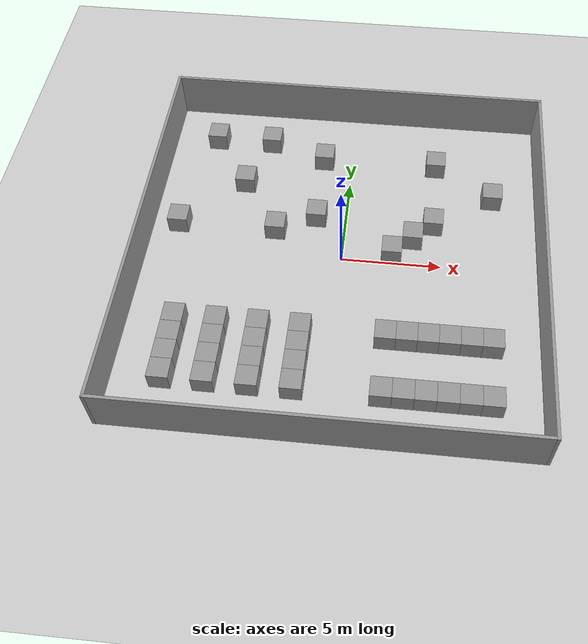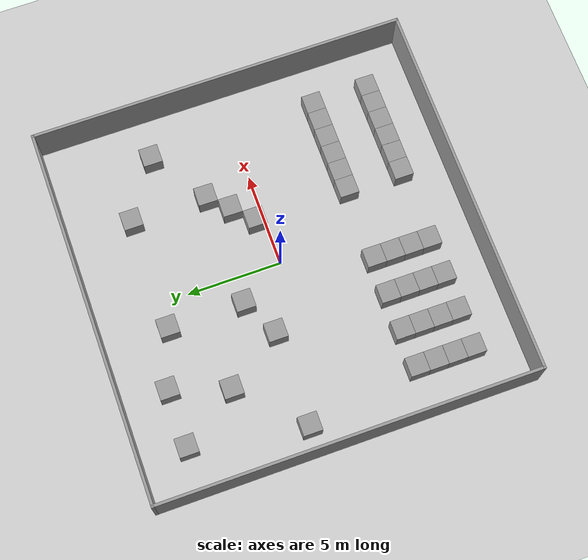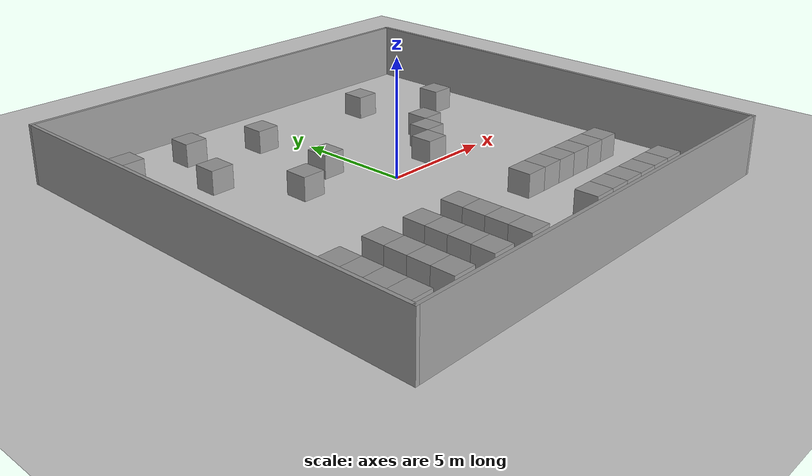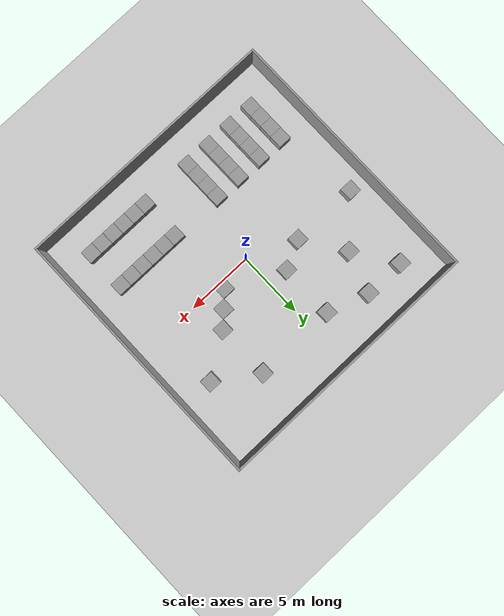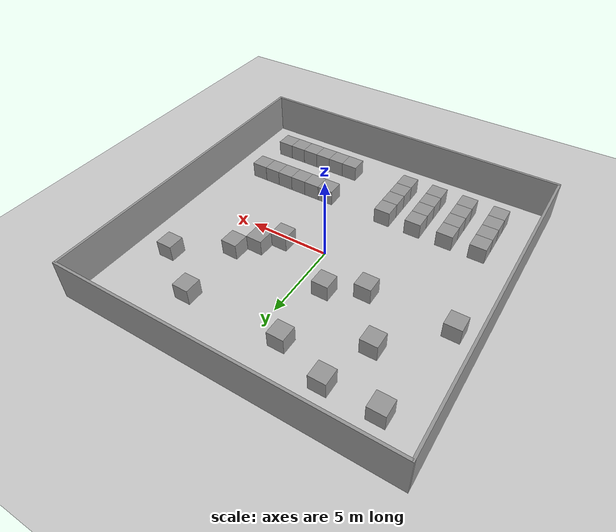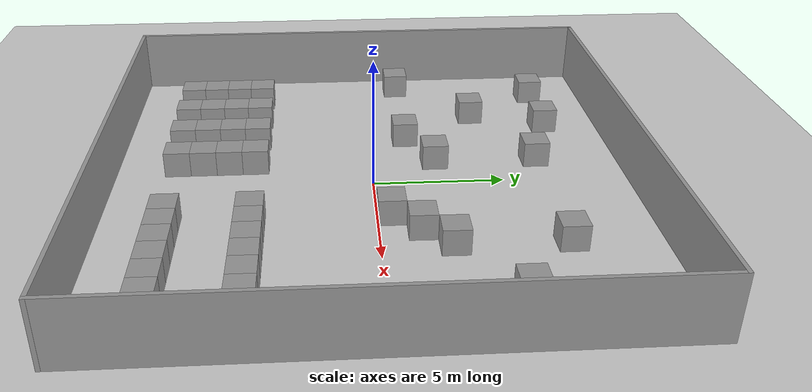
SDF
<sdf version="1.7">
 <world name="default">
  <light name="sun" type="directional">
   <pose>0 0 10 0 -0 0</pose>
   <diffuse>0.8 0.8 0.8 1</diffuse>
   <specular>0.2 0.2 0.2 1</specular>
   <attenuation>
    <range>1000</range>
    <constant>0.9</constant>
    <linear>0.01</linear>
    <quadratic>0.001</quadratic>
   </attenuation>
   <direction>-0.5 0.1 -0.9</direction>
   <spot><inner_angle>0</inner_angle><outer_angle>0</outer_angle><falloff>0</falloff></spot>
  </light>
  <model name="ground_plane">
   <static>1</static>
   <link name="link">
    <collision name="collision">
     <geometry><plane><normal>0 0 1</normal><size>100 100</size></plane></geometry>
     <surface>
      <contact><collide_bitmask>65535</collide_bitmask></contact>
      <friction><ode><mu>1000</mu><mu2>500</mu2></ode></friction>
     </surface>
    </collision>
    <visual name="visual">
     <cast_shadows>0</cast_shadows>
     <geometry><plane><normal>0 0 1</normal><size>100 100</size></plane></geometry>
     <material>
      <script><uri>file://media/materials/scripts/gazebo.material</uri><name>Gazebo/Grey</name></script>
     </material>
    </visual>
   </link>
  </model>
  <gravity>0 0 -9.8</gravity>
  <magnetic_field>6e-06 2.3e-05 -4.2e-05</magnetic_field>
  <atmosphere type="adiabatic"/>
  <physics type="ode">
   <max_step_size>0.001</max_step_size>
   <real_time_factor>1</real_time_factor>
   <real_time_update_rate>1000</real_time_update_rate>
  </physics>
  <scene><ambient>0.4 0.4 0.4 1</ambient><background>0.7 0.7 0.7 1</background><shadows>1</shadows></scene>
  <spherical_coordinates>
   <surface_model>EARTH_WGS84</surface_model>
   <latitude_deg>0</latitude_deg>
   <longitude_deg>0</longitude_deg>
   <elevation>0</elevation>
   <heading_deg>0</heading_deg>
  </spherical_coordinates>
  <model name="Wall">
   <pose>-0.04745 3.63741 0 0 -0 0</pose>
   <link name="Wall_46">
    <collision name="Wall_46_Collision">
     <geometry><box><size>20 0.15 2.5</size></box></geometry>
     <pose>0 0 1.25 0 -0 0</pose>
    </collision>
    <visual name="Wall_46_Visual">
     <pose>0 0 1.25 0 -0 0</pose>
     <geometry><box><size>20 0.15 2.5</size></box></geometry>
     <material>
      <script><uri>file://media/materials/scripts/gazebo.material</uri><name>Gazebo/Grey</name></script>
      <ambient>1 1 1 1</ambient>
     </material>
     <meta><layer>0</layer></meta>
    </visual>
    <pose>-9.925 -3.67114 0 0 -0 -1.5708</pose>
   </link>
   <link name="Wall_48">
    <collision name="Wall_48_Collision">
     <geometry><box><size>20 0.15 2.5</size></box></geometry>
     <pose>0 0 1.25 0 -0 0</pose>
    </collision>
    <visual name="Wall_48_Visual">
     <pose>0 0 1.25 0 -0 0</pose>
     <geometry><box><size>20 0.15 2.5</size></box></geometry>
     <material>
      <script><uri>file://media/materials/scripts/gazebo.material</uri><name>Gazebo/Grey</name></script>
      <ambient>1 1 1 1</ambient>
     </material>
     <meta><layer>0</layer></meta>
    </visual>
    <pose>-0 6.25387 0 0 -0 0</pose>
   </link>
   <link name="Wall_50">
    <collision name="Wall_50_Collision">
     <geometry><box><size>20 0.15 2.5</size></box></geometry>
     <pose>0 0 1.25 0 -0 0</pose>
    </collision>
    <visual name="Wall_50_Visual">
     <pose>0 0 1.25 0 -0 0</pose>
     <geometry><box><size>20 0.15 2.5</size></box></geometry>
     <material>
      <script><uri>file://media/materials/scripts/gazebo.material</uri><name>Gazebo/Grey</name></script>
      <ambient>1 1 1 1</ambient>
     </material>
     <meta><layer>0</layer></meta>
    </visual>
    <pose>9.925 -3.67114 0 0 -0 -1.5708</pose>
   </link>
   <link name="Wall_52">
    <collision name="Wall_52_Collision">
     <geometry><box><size>20 0.15 2.5</size></box></geometry>
     <pose>0 0 1.25 0 -0 0</pose>
    </collision>
    <visual name="Wall_52_Visual">
     <pose>0 0 1.25 0 -0 0</pose>
     <geometry><box><size>20 0.15 2.5</size></box></geometry>
     <material>
      <script><uri>file://media/materials/scripts/gazebo.material</uri><name>Gazebo/Grey</name></script>
      <ambient>1 1 1 1</ambient>
     </material>
     <meta><layer>0</layer></meta>
    </visual>
    <pose>-0 -13.5961 0 0 -0 0</pose>
   </link>
   <static>1</static>
  </model>
  <model name="unit_box">
   <pose>-1.50001 -7.50001 0.499995 -1e-05 -0 -7e-06</pose>
   <link name="link">
    <inertial>
     <mass>1</mass>
     <inertia>
      <ixx>0.166667</ixx>
      <ixy>0</ixy>
      <ixz>0</ixz>
      <iyy>0.166667</iyy>
      <iyz>0</iyz>
      <izz>0.166667</izz>
     </inertia>
    </inertial>
    <collision name="collision"><geometry><box><size>1 1 1</size></box></geometry></collision>
    <visual name="visual">
     <geometry><box><size>1 1 1</size></box></geometry>
     <material>
      <script><name>Gazebo/Grey</name><uri>file://media/materials/scripts/gazebo.material</uri></script>
     </material>
    </visual>
   </link>
  </model>
  <model name="unit_box_0">
   <pose>-1.50002 -5.5 0.499995 -1e-05 -0 -3e-06</pose>
   <link name="link">
    <inertial>
     <mass>1</mass>
     <inertia>
      <ixx>0.166667</ixx>
      <ixy>0</ixy>
      <ixz>0</ixz>
      <iyy>0.166667</iyy>
      <iyz>0</iyz>
      <izz>0.166667</izz>
     </inertia>
    </inertial>
    <collision name="collision"><geometry><box><size>1 1 1</size></box></geometry></collision>
    <visual name="visual">
     <geometry><box><size>1 1 1</size></box></geometry>
     <material>
      <script><name>Gazebo/Grey</name><uri>file://media/materials/scripts/gazebo.material</uri></script>
     </material>
    </visual>
   </link>
  </model>
  <model name="unit_box_1">
   <pose>-1.5 -4.5 0.499995 -1e-05 0 -4e-06</pose>
   <link name="link">
    <inertial>
     <mass>1</mass>
     <inertia>
      <ixx>0.166667</ixx>
      <ixy>0</ixy>
      <ixz>0</ixz>
      <iyy>0.166667</iyy>
      <iyz>0</iyz>
      <izz>0.166667</izz>
     </inertia>
    </inertial>
    <collision name="collision"><geometry><box><size>1 1 1</size></box></geometry></collision>
    <visual name="visual">
     <geometry><box><size>1 1 1</size></box></geometry>
     <material>
      <script><name>Gazebo/Grey</name><uri>file://media/materials/scripts/gazebo.material</uri></script>
     </material>
    </visual>
   </link>
  </model>
  <model name="unit_box_2">
   <pose>-3.5 -7.5 0.499995 -1e-05 0 0.000525</pose>
   <link name="link">
    <inertial>
     <mass>1</mass>
     <inertia>
      <ixx>0.166667</ixx>
      <ixy>0</ixy>
      <ixz>0</ixz>
      <iyy>0.166667</iyy>
      <iyz>0</iyz>
      <izz>0.166667</izz>
     </inertia>
    </inertial>
    <collision name="collision"><geometry><box><size>1 1 1</size></box></geometry></collision>
    <visual name="visual">
     <geometry><box><size>1 1 1</size></box></geometry>
     <material>
      <script><name>Gazebo/Grey</name><uri>file://media/materials/scripts/gazebo.material</uri></script>
     </material>
    </visual>
   </link>
  </model>
  <model name="unit_box_3">
   <pose>-3.50052 -6.49999 0.5 0 -0 0.000522</pose>
   <link name="link">
    <inertial>
     <mass>1</mass>
     <inertia>
      <ixx>0.166667</ixx>
      <ixy>0</ixy>
      <ixz>0</ixz>
      <iyy>0.166667</iyy>
      <iyz>0</iyz>
      <izz>0.166667</izz>
     </inertia>
    </inertial>
    <collision name="collision"><geometry><box><size>1 1 1</size></box></geometry></collision>
    <visual name="visual">
     <geometry><box><size>1 1 1</size></box></geometry>
     <material>
      <script><name>Gazebo/Grey</name><uri>file://media/materials/scripts/gazebo.material</uri></script>
     </material>
    </visual>
   </link>
  </model>
  <model name="unit_box_4">
   <pose>-3.50158 -4.49999 0.499995 -0 -1e-05 0.000523</pose>
   <link name="link">
    <inertial>
     <mass>1</mass>
     <inertia>
      <ixx>0.166667</ixx>
      <ixy>0</ixy>
      <ixz>0</ixz>
      <iyy>0.166667</iyy>
      <iyz>0</iyz>
      <izz>0.166667</izz>
     </inertia>
    </inertial>
    <collision name="collision"><geometry><box><size>1 1 1</size></box></geometry></collision>
    <visual name="visual">
     <geometry><box><size>1 1 1</size></box></geometry>
     <material>
      <script><name>Gazebo/Grey</name><uri>file://media/materials/scripts/gazebo.material</uri></script>
     </material>
    </visual>
   </link>
  </model>
  <model name="unit_box_5">
   <pose>-3.50107 -5.49999 0.5 0 -0 0.000522</pose>
   <link name="link">
    <inertial>
     <mass>1</mass>
     <inertia>
      <ixx>0.166667</ixx>
      <ixy>0</ixy>
      <ixz>0</ixz>
      <iyy>0.166667</iyy>
      <iyz>0</iyz>
      <izz>0.166667</izz>
     </inertia>
    </inertial>
    <collision name="collision"><geometry><box><size>1 1 1</size></box></geometry></collision>
    <visual name="visual">
     <geometry><box><size>1 1 1</size></box></geometry>
     <material>
      <script><name>Gazebo/Grey</name><uri>file://media/materials/scripts/gazebo.material</uri></script>
     </material>
    </visual>
   </link>
  </model>
  <model name="unit_box_6">
   <pose>-1.50004 -6.50001 0.499995 -1e-05 0 -9e-06</pose>
   <link name="link">
    <inertial>
     <mass>1</mass>
     <inertia>
      <ixx>0.166667</ixx>
      <ixy>0</ixy>
      <ixz>0</ixz>
      <iyy>0.166667</iyy>
      <iyz>0</iyz>
      <izz>0.166667</izz>
     </inertia>
    </inertial>
    <collision name="collision"><geometry><box><size>1 1 1</size></box></geometry></collision>
    <visual name="visual">
     <geometry><box><size>1 1 1</size></box></geometry>
     <material>
      <script><name>Gazebo/Grey</name><uri>file://media/materials/scripts/gazebo.material</uri></script>
     </material>
    </visual>
   </link>
  </model>
  <model name="unit_box_7">
   <pose>-5.49997 -7.50157 0.499995 -0 -1e-05 0.000162</pose>
   <link name="link">
    <inertial>
     <mass>1</mass>
     <inertia>
      <ixx>0.166667</ixx>
      <ixy>0</ixy>
      <ixz>0</ixz>
      <iyy>0.166667</iyy>
      <iyz>0</iyz>
      <izz>0.166667</izz>
     </inertia>
    </inertial>
    <collision name="collision"><geometry><box><size>1 1 1</size></box></geometry></collision>
    <visual name="visual">
     <geometry><box><size>1 1 1</size></box></geometry>
     <material>
      <script><name>Gazebo/Grey</name><uri>file://media/materials/scripts/gazebo.material</uri></script>
     </material>
    </visual>
   </link>
  </model>
  <model name="unit_box_8">
   <pose>-5.50011 -6.50155 0.499995 0 1e-05 0.000151</pose>
   <link name="link">
    <inertial>
     <mass>1</mass>
     <inertia>
      <ixx>0.166667</ixx>
      <ixy>0</ixy>
      <ixz>0</ixz>
      <iyy>0.166667</iyy>
      <iyz>0</iyz>
      <izz>0.166667</izz>
     </inertia>
    </inertial>
    <collision name="collision"><geometry><box><size>1 1 1</size></box></geometry></collision>
    <visual name="visual">
     <geometry><box><size>1 1 1</size></box></geometry>
     <material>
      <script><name>Gazebo/Grey</name><uri>file://media/materials/scripts/gazebo.material</uri></script>
     </material>
    </visual>
   </link>
  </model>
  <model name="unit_box_9">
   <pose>-5.50026 -5.50155 0.499995 0 1e-05 0.000153</pose>
   <link name="link">
    <inertial>
     <mass>1</mass>
     <inertia>
      <ixx>0.166667</ixx>
      <ixy>0</ixy>
      <ixz>0</ixz>
      <iyy>0.166667</iyy>
      <iyz>0</iyz>
      <izz>0.166667</izz>
     </inertia>
    </inertial>
    <collision name="collision"><geometry><box><size>1 1 1</size></box></geometry></collision>
    <visual name="visual">
     <geometry><box><size>1 1 1</size></box></geometry>
     <material>
      <script><name>Gazebo/Grey</name><uri>file://media/materials/scripts/gazebo.material</uri></script>
     </material>
    </visual>
   </link>
  </model>
  <model name="unit_box_10">
   <pose>-5.50044 -4.50154 0.499995 0 1e-05 0.000153</pose>
   <link name="link">
    <inertial>
     <mass>1</mass>
     <inertia>
      <ixx>0.166667</ixx>
      <ixy>0</ixy>
      <ixz>0</ixz>
      <iyy>0.166667</iyy>
      <iyz>0</iyz>
      <izz>0.166667</izz>
     </inertia>
    </inertial>
    <collision name="collision"><geometry><box><size>1 1 1</size></box></geometry></collision>
    <visual name="visual">
     <geometry><box><size>1 1 1</size></box></geometry>
     <material>
      <script><name>Gazebo/Grey</name><uri>file://media/materials/scripts/gazebo.material</uri></script>
     </material>
    </visual>
   </link>
  </model>
  <model name="unit_box_11">
   <pose>-7.50005 -7.50059 0.499995 -0 1e-05 0.00027</pose>
   <link name="link">
    <inertial>
     <mass>1</mass>
     <inertia>
      <ixx>0.166667</ixx>
      <ixy>0</ixy>
      <ixz>0</ixz>
      <iyy>0.166667</iyy>
      <iyz>0</iyz>
      <izz>0.166667</izz>
     </inertia>
    </inertial>
    <collision name="collision"><geometry><box><size>1 1 1</size></box></geometry></collision>
    <visual name="visual">
     <geometry><box><size>1 1 1</size></box></geometry>
     <material>
      <script><name>Gazebo/Grey</name><uri>file://media/materials/scripts/gazebo.material</uri></script>
     </material>
    </visual>
   </link>
  </model>
  <model name="unit_box_12">
   <pose>-7.5001 -6.50026 0.499995 0 1e-05 0.000231</pose>
   <link name="link">
    <inertial>
     <mass>1</mass>
     <inertia>
      <ixx>0.166667</ixx>
      <ixy>0</ixy>
      <ixz>0</ixz>
      <iyy>0.166667</iyy>
      <iyz>0</iyz>
      <izz>0.166667</izz>
     </inertia>
    </inertial>
    <collision name="collision"><geometry><box><size>1 1 1</size></box></geometry></collision>
    <visual name="visual">
     <geometry><box><size>1 1 1</size></box></geometry>
     <material>
      <script><name>Gazebo/Grey</name><uri>file://media/materials/scripts/gazebo.material</uri></script>
     </material>
    </visual>
   </link>
  </model>
  <model name="unit_box_13">
   <pose>-7.49997 -5.50003 0.499995 -0 1e-05 0.000177</pose>
   <link name="link">
    <inertial>
     <mass>1</mass>
     <inertia>
      <ixx>0.166667</ixx>
      <ixy>0</ixy>
      <ixz>0</ixz>
      <iyy>0.166667</iyy>
      <iyz>0</iyz>
      <izz>0.166667</izz>
     </inertia>
    </inertial>
    <collision name="collision"><geometry><box><size>1 1 1</size></box></geometry></collision>
    <visual name="visual">
     <geometry><box><size>1 1 1</size></box></geometry>
     <material>
      <script><name>Gazebo/Grey</name><uri>file://media/materials/scripts/gazebo.material</uri></script>
     </material>
    </visual>
   </link>
  </model>
  <model name="unit_box_14">
   <pose>-7.49998 -4.49996 0.499995 0 1e-05 7.1e-05</pose>
   <link name="link">
    <inertial>
     <mass>1</mass>
     <inertia>
      <ixx>0.166667</ixx>
      <ixy>0</ixy>
      <ixz>0</ixz>
      <iyy>0.166667</iyy>
      <iyz>0</iyz>
      <izz>0.166667</izz>
     </inertia>
    </inertial>
    <collision name="collision"><geometry><box><size>1 1 1</size></box></geometry></collision>
    <visual name="visual">
     <geometry><box><size>1 1 1</size></box></geometry>
     <material>
      <script><name>Gazebo/Grey</name><uri>file://media/materials/scripts/gazebo.material</uri></script>
     </material>
    </visual>
   </link>
  </model>
  <model name="unit_box_15">
   <pose>2.49912 -7.50018 0.499995 -1e-05 -0 -0.002998</pose>
   <link name="link">
    <inertial>
     <mass>1</mass>
     <inertia>
      <ixx>0.166667</ixx>
      <ixy>0</ixy>
      <ixz>0</ixz>
      <iyy>0.166667</iyy>
      <iyz>0</iyz>
      <izz>0.166667</izz>
     </inertia>
    </inertial>
    <collision name="collision"><geometry><box><size>1 1 1</size></box></geometry></collision>
    <visual name="visual">
     <geometry><box><size>1 1 1</size></box></geometry>
     <material>
      <script><name>Gazebo/Grey</name><uri>file://media/materials/scripts/gazebo.material</uri></script>
     </material>
    </visual>
   </link>
  </model>
  <model name="unit_box_16">
   <pose>3.49912 -7.49985 0.499995 -1e-05 -0 -0.002995</pose>
   <link name="link">
    <inertial>
     <mass>1</mass>
     <inertia>
      <ixx>0.166667</ixx>
      <ixy>0</ixy>
      <ixz>0</ixz>
      <iyy>0.166667</iyy>
      <iyz>0</iyz>
      <izz>0.166667</izz>
     </inertia>
    </inertial>
    <collision name="collision"><geometry><box><size>1 1 1</size></box></geometry></collision>
    <visual name="visual">
     <geometry><box><size>1 1 1</size></box></geometry>
     <material>
      <script><name>Gazebo/Grey</name><uri>file://media/materials/scripts/gazebo.material</uri></script>
     </material>
    </visual>
   </link>
  </model>
  <model name="unit_box_17">
   <pose>4.49978 -7.49977 0.499995 1e-05 -0 -0.001692</pose>
   <link name="link">
    <inertial>
     <mass>1</mass>
     <inertia>
      <ixx>0.166667</ixx>
      <ixy>0</ixy>
      <ixz>0</ixz>
      <iyy>0.166667</iyy>
      <iyz>0</iyz>
      <izz>0.166667</izz>
     </inertia>
    </inertial>
    <collision name="collision"><geometry><box><size>1 1 1</size></box></geometry></collision>
    <visual name="visual">
     <geometry><box><size>1 1 1</size></box></geometry>
     <material>
      <script><name>Gazebo/Grey</name><uri>file://media/materials/scripts/gazebo.material</uri></script>
     </material>
    </visual>
   </link>
  </model>
  <model name="unit_box_18">
   <pose>5.49999 -7.49977 0.499995 1e-05 -0 -0.001289</pose>
   <link name="link">
    <inertial>
     <mass>1</mass>
     <inertia>
      <ixx>0.166667</ixx>
      <ixy>0</ixy>
      <ixz>0</ixz>
      <iyy>0.166667</iyy>
      <iyz>0</iyz>
      <izz>0.166667</izz>
     </inertia>
    </inertial>
    <collision name="collision"><geometry><box><size>1 1 1</size></box></geometry></collision>
    <visual name="visual">
     <geometry><box><size>1 1 1</size></box></geometry>
     <material>
      <script><name>Gazebo/Grey</name><uri>file://media/materials/scripts/gazebo.material</uri></script>
     </material>
    </visual>
   </link>
  </model>
  <model name="unit_box_19">
   <pose>6.50035 -7.49993 0.499995 -1e-05 -0 -0.000582</pose>
   <link name="link">
    <inertial>
     <mass>1</mass>
     <inertia>
      <ixx>0.166667</ixx>
      <ixy>0</ixy>
      <ixz>0</ixz>
      <iyy>0.166667</iyy>
      <iyz>0</iyz>
      <izz>0.166667</izz>
     </inertia>
    </inertial>
    <collision name="collision"><geometry><box><size>1 1 1</size></box></geometry></collision>
    <visual name="visual">
     <geometry><box><size>1 1 1</size></box></geometry>
     <material>
      <script><name>Gazebo/Grey</name><uri>file://media/materials/scripts/gazebo.material</uri></script>
     </material>
    </visual>
   </link>
  </model>
  <model name="unit_box_20">
   <pose>7.50037 -7.50006 0.499995 0 1e-05 -0.000573</pose>
   <link name="link">
    <inertial>
     <mass>1</mass>
     <inertia>
      <ixx>0.166667</ixx>
      <ixy>0</ixy>
      <ixz>0</ixz>
      <iyy>0.166667</iyy>
      <iyz>0</iyz>
      <izz>0.166667</izz>
     </inertia>
    </inertial>
    <collision name="collision"><geometry><box><size>1 1 1</size></box></geometry></collision>
    <visual name="visual">
     <geometry><box><size>1 1 1</size></box></geometry>
     <material>
      <script><name>Gazebo/Grey</name><uri>file://media/materials/scripts/gazebo.material</uri></script>
     </material>
    </visual>
   </link>
  </model>
  <model name="unit_box_21">
   <pose>2.49993 -4.49998 0.499995 -1e-05 -0 -0.000153</pose>
   <link name="link">
    <inertial>
     <mass>1</mass>
     <inertia>
      <ixx>0.166667</ixx>
      <ixy>0</ixy>
      <ixz>0</ixz>
      <iyy>0.166667</iyy>
      <iyz>0</iyz>
      <izz>0.166667</izz>
     </inertia>
    </inertial>
    <collision name="collision"><geometry><box><size>1 1 1</size></box></geometry></collision>
    <visual name="visual">
     <geometry><box><size>1 1 1</size></box></geometry>
     <material>
      <script><name>Gazebo/Grey</name><uri>file://media/materials/scripts/gazebo.material</uri></script>
     </material>
    </visual>
   </link>
  </model>
  <model name="unit_box_22">
   <pose>3.49996 -4.49999 0.499995 0 1e-05 -0.000188</pose>
   <link name="link">
    <inertial>
     <mass>1</mass>
     <inertia>
      <ixx>0.166667</ixx>
      <ixy>0</ixy>
      <ixz>0</ixz>
      <iyy>0.166667</iyy>
      <iyz>0</iyz>
      <izz>0.166667</izz>
     </inertia>
    </inertial>
    <collision name="collision"><geometry><box><size>1 1 1</size></box></geometry></collision>
    <visual name="visual">
     <geometry><box><size>1 1 1</size></box></geometry>
     <material>
      <script><name>Gazebo/Grey</name><uri>file://media/materials/scripts/gazebo.material</uri></script>
     </material>
    </visual>
   </link>
  </model>
  <model name="unit_box_23">
   <pose>4.49996 -4.50005 0.499995 0 1e-05 -0.000193</pose>
   <link name="link">
    <inertial>
     <mass>1</mass>
     <inertia>
      <ixx>0.166667</ixx>
      <ixy>0</ixy>
      <ixz>0</ixz>
      <iyy>0.166667</iyy>
      <iyz>0</iyz>
      <izz>0.166667</izz>
     </inertia>
    </inertial>
    <collision name="collision"><geometry><box><size>1 1 1</size></box></geometry></collision>
    <visual name="visual">
     <geometry><box><size>1 1 1</size></box></geometry>
     <material>
      <script><name>Gazebo/Grey</name><uri>file://media/materials/scripts/gazebo.material</uri></script>
     </material>
    </visual>
   </link>
  </model>
  <model name="unit_box_24">
   <pose>5.50007 -4.50004 0.499995 -0 1e-05 -0.000404</pose>
   <link name="link">
    <inertial>
     <mass>1</mass>
     <inertia>
      <ixx>0.166667</ixx>
      <ixy>0</ixy>
      <ixz>0</ixz>
      <iyy>0.166667</iyy>
      <iyz>0</iyz>
      <izz>0.166667</izz>
     </inertia>
    </inertial>
    <collision name="collision"><geometry><box><size>1 1 1</size></box></geometry></collision>
    <visual name="visual">
     <geometry><box><size>1 1 1</size></box></geometry>
     <material>
      <script><name>Gazebo/Grey</name><uri>file://media/materials/scripts/gazebo.material</uri></script>
     </material>
    </visual>
   </link>
  </model>
  <model name="unit_box_25">
   <pose>6.50008 -4.5 0.499995 0 1e-05 -0.000405</pose>
   <link name="link">
    <inertial>
     <mass>1</mass>
     <inertia>
      <ixx>0.166667</ixx>
      <ixy>0</ixy>
      <ixz>0</ixz>
      <iyy>0.166667</iyy>
      <iyz>0</iyz>
      <izz>0.166667</izz>
     </inertia>
    </inertial>
    <collision name="collision"><geometry><box><size>1 1 1</size></box></geometry></collision>
    <visual name="visual">
     <geometry><box><size>1 1 1</size></box></geometry>
     <material>
      <script><name>Gazebo/Grey</name><uri>file://media/materials/scripts/gazebo.material</uri></script>
     </material>
    </visual>
   </link>
  </model>
  <model name="unit_box_26">
   <pose>7.50009 -4.49998 0.499995 0 1e-05 -0.000398</pose>
   <link name="link">
    <inertial>
     <mass>1</mass>
     <inertia>
      <ixx>0.166667</ixx>
      <ixy>0</ixy>
      <ixz>0</ixz>
      <iyy>0.166667</iyy>
      <iyz>0</iyz>
      <izz>0.166667</izz>
     </inertia>
    </inertial>
    <collision name="collision"><geometry><box><size>1 1 1</size></box></geometry></collision>
    <visual name="visual">
     <geometry><box><size>1 1 1</size></box></geometry>
     <material>
      <script><name>Gazebo/Grey</name><uri>file://media/materials/scripts/gazebo.material</uri></script>
     </material>
    </visual>
   </link>
  </model>
  <model name="unit_box_27">
   <pose>2.49999 0.5 0.499995 0 -1e-05 -0.002406</pose>
   <link name="link">
    <inertial>
     <mass>1</mass>
     <inertia>
      <ixx>0.166667</ixx>
      <ixy>0</ixy>
      <ixz>0</ixz>
      <iyy>0.166667</iyy>
      <iyz>0</iyz>
      <izz>0.166667</izz>
     </inertia>
    </inertial>
    <collision name="collision"><geometry><box><size>1 1 1</size></box></geometry></collision>
    <visual name="visual">
     <geometry><box><size>1 1 1</size></box></geometry>
     <material>
      <script><name>Gazebo/Grey</name><uri>file://media/materials/scripts/gazebo.material</uri></script>
     </material>
    </visual>
   </link>
  </model>
  <model name="unit_box_28">
   <pose>3.5 1.49999 0.499995 0 -1e-05 -0.013956</pose>
   <link name="link">
    <inertial>
     <mass>1</mass>
     <inertia>
      <ixx>0.166667</ixx>
      <ixy>0</ixy>
      <ixz>0</ixz>
      <iyy>0.166667</iyy>
      <iyz>0</iyz>
      <izz>0.166667</izz>
     </inertia>
    </inertial>
    <collision name="collision"><geometry><box><size>1 1 1</size></box></geometry></collision>
    <visual name="visual">
     <geometry><box><size>1 1 1</size></box></geometry>
     <material>
      <script><name>Gazebo/Grey</name><uri>file://media/materials/scripts/gazebo.material</uri></script>
     </material>
    </visual>
   </link>
  </model>
  <model name="unit_box_29">
   <pose>4.5 2.5 0.499995 1e-05 -0 -0.013202</pose>
   <link name="link">
    <inertial>
     <mass>1</mass>
     <inertia>
      <ixx>0.166667</ixx>
      <ixy>0</ixy>
      <ixz>0</ixz>
      <iyy>0.166667</iyy>
      <iyz>0</iyz>
      <izz>0.166667</izz>
     </inertia>
    </inertial>
    <collision name="collision"><geometry><box><size>1 1 1</size></box></geometry></collision>
    <visual name="visual">
     <geometry><box><size>1 1 1</size></box></geometry>
     <material>
      <script><name>Gazebo/Grey</name><uri>file://media/materials/scripts/gazebo.material</uri></script>
     </material>
    </visual>
   </link>
  </model>
  <model name="unit_box_30">
   <pose>4.5 6.5 0.499995 0 -1e-05 0</pose>
   <link name="link">
    <inertial>
     <mass>1</mass>
     <inertia>
      <ixx>0.166667</ixx>
      <ixy>0</ixy>
      <ixz>0</ixz>
      <iyy>0.166667</iyy>
      <iyz>0</iyz>
      <izz>0.166667</izz>
     </inertia>
    </inertial>
    <collision name="collision"><geometry><box><size>1 1 1</size></box></geometry></collision>
    <visual name="visual">
     <geometry><box><size>1 1 1</size></box></geometry>
     <material>
      <script><name>Gazebo/Grey</name><uri>file://media/materials/scripts/gazebo.material</uri></script>
     </material>
    </visual>
   </link>
  </model>
  <model name="unit_box_31">
   <pose>7.5 4.5 0.499995 0 1e-05 0</pose>
   <link name="link">
    <inertial>
     <mass>1</mass>
     <inertia>
      <ixx>0.166667</ixx>
      <ixy>0</ixy>
      <ixz>0</ixz>
      <iyy>0.166667</iyy>
      <iyz>0</iyz>
      <izz>0.166667</izz>
     </inertia>
    </inertial>
    <collision name="collision"><geometry><box><size>1 1 1</size></box></geometry></collision>
    <visual name="visual">
     <geometry><box><size>1 1 1</size></box></geometry>
     <material>
      <script><name>Gazebo/Grey</name><uri>file://media/materials/scripts/gazebo.material</uri></script>
     </material>
    </visual>
   </link>
  </model>
  <model name="unit_box_32">
   <pose>-5.5 4.5 0.499995 0 -1e-05 0</pose>
   <link name="link">
    <inertial>
     <mass>1</mass>
     <inertia>
      <ixx>0.166667</ixx>
      <ixy>0</ixy>
      <ixz>0</ixz>
      <iyy>0.166667</iyy>
      <iyz>0</iyz>
      <izz>0.166667</izz>
     </inertia>
    </inertial>
    <collision name="collision"><geometry><box><size>1 1 1</size></box></geometry></collision>
    <visual name="visual">
     <geometry><box><size>1 1 1</size></box></geometry>
     <material>
      <script><name>Gazebo/Grey</name><uri>file://media/materials/scripts/gazebo.material</uri></script>
     </material>
    </visual>
   </link>
  </model>
  <model name="unit_box_33">
   <pose>-8.5 1.5 0.5 0 -0 0</pose>
   <link name="link">
    <inertial>
     <mass>1</mass>
     <inertia>
      <ixx>0.166667</ixx>
      <ixy>0</ixy>
      <ixz>0</ixz>
      <iyy>0.166667</iyy>
      <iyz>0</iyz>
      <izz>0.166667</izz>
     </inertia>
    </inertial>
    <collision name="collision"><geometry><box><size>1 1 1</size></box></geometry></collision>
    <visual name="visual">
     <geometry><box><size>1 1 1</size></box></geometry>
     <material>
      <script><name>Gazebo/Grey</name><uri>file://media/materials/scripts/gazebo.material</uri></script>
     </material>
    </visual>
   </link>
  </model>
  <model name="unit_box_34">
   <pose>-3.5 1.50001 0.499995 0 -1e-05 0</pose>
   <link name="link">
    <inertial>
     <mass>1</mass>
     <inertia>
      <ixx>0.166667</ixx>
      <ixy>0</ixy>
      <ixz>0</ixz>
      <iyy>0.166667</iyy>
      <iyz>0</iyz>
      <izz>0.166667</izz>
     </inertia>
    </inertial>
    <collision name="collision"><geometry><box><size>1 1 1</size></box></geometry></collision>
    <visual name="visual">
     <geometry><box><size>1 1 1</size></box></geometry>
     <material>
      <script><name>Gazebo/Grey</name><uri>file://media/materials/scripts/gazebo.material</uri></script>
     </material>
    </visual>
   </link>
  </model>
  <model name="unit_box_35">
   <pose>-7.5 7.5 0.499995 1e-05 -0 0</pose>
   <link name="link">
    <inertial>
     <mass>1</mass>
     <inertia>
      <ixx>0.166667</ixx>
      <ixy>0</ixy>
      <ixz>0</ixz>
      <iyy>0.166667</iyy>
      <iyz>0</iyz>
      <izz>0.166667</izz>
     </inertia>
    </inertial>
    <collision name="collision"><geometry><box><size>1 1 1</size></box></geometry></collision>
    <visual name="visual">
     <geometry><box><size>1 1 1</size></box></geometry>
     <material>
      <script><name>Gazebo/Grey</name><uri>file://media/materials/scripts/gazebo.material</uri></script>
     </material>
    </visual>
   </link>
  </model>
  <model name="unit_box_36">
   <pose>-1.49999 6.5 0.499995 0 1e-05 0</pose>
   <link name="link">
    <inertial>
     <mass>1</mass>
     <inertia>
      <ixx>0.166667</ixx>
      <ixy>0</ixy>
      <ixz>0</ixz>
      <iyy>0.166667</iyy>
      <iyz>0</iyz>
      <izz>0.166667</izz>
     </inertia>
    </inertial>
    <collision name="collision"><geometry><box><size>1 1 1</size></box></geometry></collision>
    <visual name="visual">
     <geometry><box><size>1 1 1</size></box></geometry>
     <material>
      <script><name>Gazebo/Grey</name><uri>file://media/materials/scripts/gazebo.material</uri></script>
     </material>
    </visual>
   </link>
  </model>
  <model name="unit_box_37">
   <pose>-1.50001 2.5 0.499995 0 -1e-05 0</pose>
   <link name="link">
    <inertial>
     <mass>1</mass>
     <inertia>
      <ixx>0.166667</ixx>
      <ixy>0</ixy>
      <ixz>0</ixz>
      <iyy>0.166667</iyy>
      <iyz>0</iyz>
      <izz>0.166667</izz>
     </inertia>
    </inertial>
    <collision name="collision"><geometry><box><size>1 1 1</size></box></geometry></collision>
    <visual name="visual">
     <geometry><box><size>1 1 1</size></box></geometry>
     <material>
      <script><name>Gazebo/Grey</name><uri>file://media/materials/scripts/gazebo.material</uri></script>
     </material>
    </visual>
   </link>
  </model>
  <model name="unit_box_38">
   <pose>-4.5 7.5 0.499995 0 -1e-05 0</pose>
   <link name="link">
    <inertial>
     <mass>1</mass>
     <inertia>
      <ixx>0.166667</ixx>
      <ixy>0</ixy>
      <ixz>0</ixz>
      <iyy>0.166667</iyy>
      <iyz>0</iyz>
      <izz>0.166667</izz>
     </inertia>
    </inertial>
    <collision name="collision"><geometry><box><size>1 1 1</size></box></geometry></collision>
    <visual name="visual">
     <geometry><box><size>1 1 1</size></box></geometry>
     <material>
      <script><name>Gazebo/Grey</name><uri>file://media/materials/scripts/gazebo.material</uri></script>
     </material>
    </visual>
   </link>
  </model>
 </world>
</sdf>
